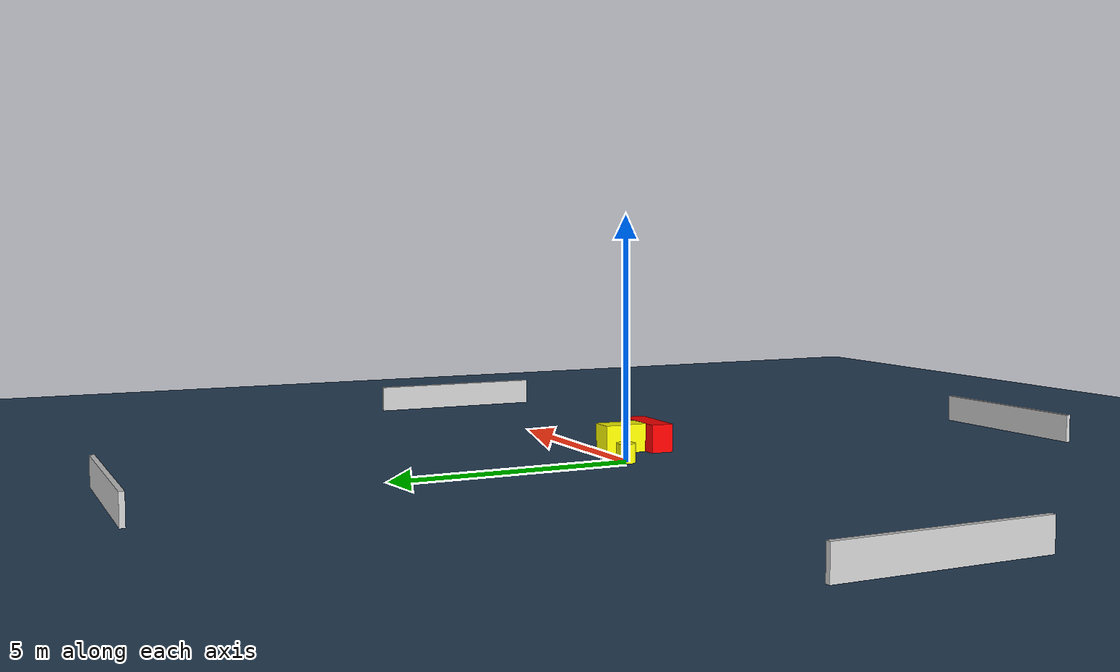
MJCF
<?xml version="1.0" ?>
<mujoco model="generated_environment">
  <option timestep="0.01" integrator="RK4" cone="elliptic"/>
  <default>
    <geom density="1"/>
  </default>
  <asset>
    <texture builtin="gradient" height="3072" name="skybox" rgb1="0.3 0.5 0.7" rgb2="0 0 0" type="skybox" width="512"/>
    <texture builtin="checker" height="300" name="groundplane" rgb1="0.2 0.3 0.4" rgb2="0.1 0.2 0.3" type="2d" width="300"/>
    <material name="groundplane" reflectance="0.2" texrepeat="5 5" texture="groundplane"/>
  </asset>
  <worldbody>
    <light dir="0 0 -1" directional="true" pos="0 0 1.5"/>
    <geom condim="3" friction="0.5 0.005 0.001" material="groundplane" name="floor" pos="0 0 0" size="0 0 0.05" type="plane"/>
    <body name="walls">
      <geom name="wall_1" condim="4" pos="-10.0 0.0 0.3" rgba="0.800000011920929 0.800000011920929 0.800000011920929 1.0" size="0.05 2.0 0.3" type="box"/>
      <geom name="wall_2" condim="4" pos="10.0 0.0 0.3" rgba="0.800000011920929 0.800000011920929 0.800000011920929 1.0" size="0.05 2.0 0.3" type="box"/>
      <geom name="wall_3" condim="4" pos="0.0 -10.0 0.3" rgba="0.800000011920929 0.800000011920929 0.800000011920929 1.0" size="2.0 0.05 0.3" type="box"/>
      <geom name="wall_4" condim="4" pos="0.0 10.0 0.3" rgba="0.800000011920929 0.800000011920929 0.800000011920929 1.0" size="2.0 0.05 0.3" type="box"/>
    </body>
    <body name="robot">
      <joint name="joint_x" type="slide" pos="0 0 0" axis="1 0 0"/>
      <joint name="joint_y" type="slide" pos="0 0 0" axis="0 1 0"/>
      <geom name="robot" type="cylinder" pos="0.0 0.0 0.2" size="0.2 0.2 0.0" mass="5.0" friction="1.0 0.005 0.0001" condim="4" rgba="1.0 1.0 0.0 1.0"/>
    </body>
    <body name="obstacle_1_movable">
      <geom name="obstacle_1_movable" condim="4" pos="1.3121869680211602 -0.547549091833513 0.3" euler="0 0 269.5227935168972" friction="0.0 0.005 0.001" rgba="1.0 1.0 0.0 1.0" size="0.4602277709831726 0.25167880309083135 0.3" type="box" mass="0.1"/>
      <joint type="free"/>
    </body>
    <body name="obstacle_2_static">
      <geom name="obstacle_2_static" condim="4" pos="1.454836287631354 -1.264033814337694 0.3" euler="0 0 268.7018149300531" friction="0.0 0.005 0.001" rgba="1.0 0.0 0.0 1.0" size="0.23891508301921105 0.7026971841485767 0.3" type="box"/>
    </body>
  </worldbody>
  <actuator>
    <motor name="actuator_x" joint="joint_x" gear="1" ctrlrange="-1 1"/>
    <motor name="actuator_y" joint="joint_y" gear="1" ctrlrange="-1 1"/>
  </actuator>
</mujoco>
